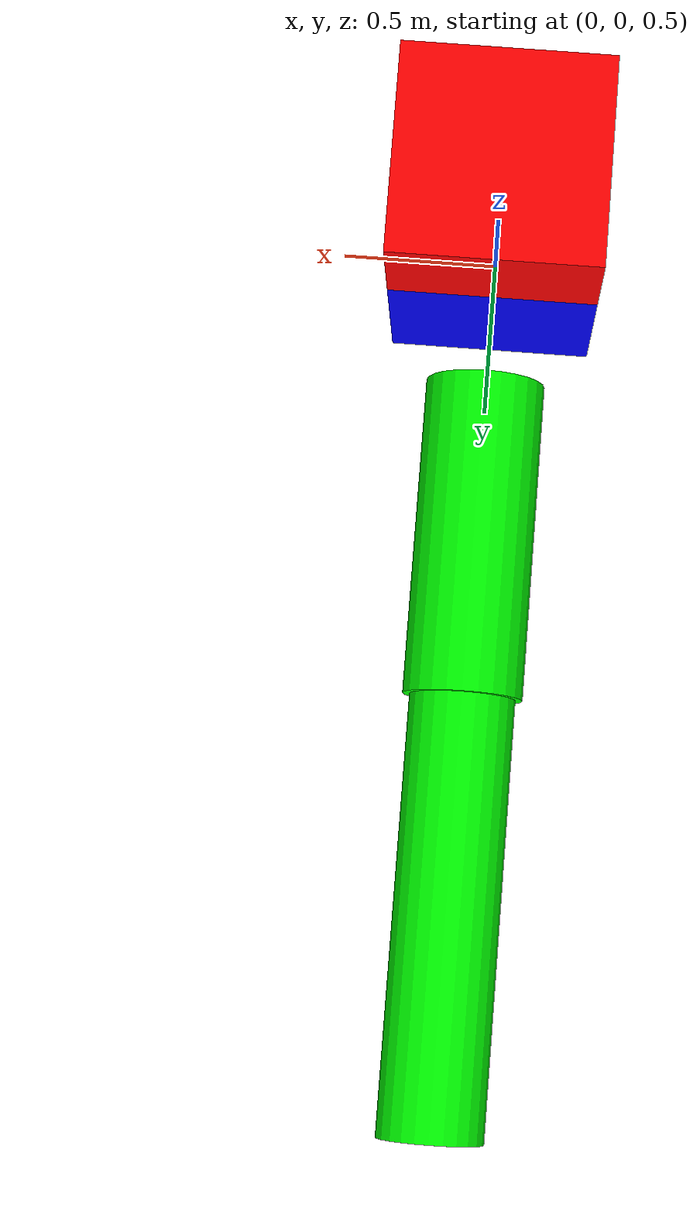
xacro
<?xml version="1.0"?>
<robot name="scara" xmlns:xacro="http://www.ros.org/wiki/xacro">

  <xacro:include filename="scara_structure.xacro"/>
  <xacro:include filename="materials.xacro"/>

  <link name="dummy"></link>

  <link name="base_link">
    <visual>
      <geometry>
        <box size="${base_link_x} ${base_link_y} ${base_link_z}"/>
      </geometry>
      <origin xyz="0.0 0.0 ${base_link_z/2}" rpy="0.0 0.0 0.0"/>
      <material name="blue"/>
    </visual>
    <collision>
      <geometry>
        <box size="${base_link_x} ${base_link_y} ${base_link_z}"/>
      </geometry>
      <origin xyz="0.0 0.0 ${base_link_z/2}" rpy="0.0 0.0 0.0"/>
    </collision>
    <xacro:box_inertia mass="${base_link_mass}" h="${base_link_z}" w="${base_link_y}" d="${base_link_x}" xyz="0.0 0.0 ${base_link_z/2}" rpy="0.0 0.0 0.0"/>
  </link>

  <joint name="dummy_joint" type="fixed">
    <parent link="dummy"/>
    <child link="base_link"/>
    <origin xyz="0.0 0.0 ${base_link_z}" rpy="0.0 0.0 0.0"/>
  </joint>

  <joint name="prismatic_joint" type="prismatic">
    <origin xyz="0.0 0.0 ${base_link_z}" rpy="0.0 0.0 0.0"/>
    <parent link="base_link"/>
    <child link="first_link"/>
    <axis xyz="0.0 0.0 1.0"/>
    <limit lower="0.0" upper="2.75" effort="10.0" velocity="2.0"/>
    <dynamics friction="0.05" damping="0.1" />
  </joint>

  <link name="first_link">
    <visual>
      <geometry>
        <box size="${first_link_x} ${first_link_y} ${first_link_z}"/>
      </geometry>
      <origin xyz="0.0 0.0 ${first_link_z/2}" rpy="0.0 0.0 0.0"/>
      <material name="red"/>
    </visual>
    <collision>
      <geometry>
        <box size="${first_link_x} ${first_link_y} ${first_link_z}"/>
      </geometry>
      <origin xyz="0.0 0.0 ${first_link_z/2}" rpy="0.0 0.0 0.0"/>
    </collision>
    <xacro:box_inertia mass="${first_link_mass}" h="${first_link_z}" w="${first_link_y}" d="${first_link_x}" xyz="0.0 0.0 ${first_link_z/2}" rpy="0.0 0.0 0.0"/>
  </link>

  <joint name="first_rev_joint" type="revolute">
    <origin xyz="0.0 ${first_link_y} ${first_link_z/2.0}" rpy="0.0 0.0 0.0"/>
    <parent link="first_link"/>
    <child link="second_link"/>
    <axis xyz="0.0 0.0 1.0"/>
    <limit lower="${-pi/2}" upper="${pi/2}" effort="10.0" velocity="2.0"/>
    <dynamics friction="0.05" damping="0.1" />
  </joint>

  <link name="second_link">
    <visual>
      <geometry>
        <cylinder radius="${second_link_r}" length="${second_link_l}"/>
      </geometry>
      <origin xyz="0.0 ${second_link_l/2} 0.0" rpy="${-pi/2} 0.0 0.0"/>
      <material name="green"/>
    </visual>
    <collision>
      <geometry>
        <cylinder radius="${second_link_r}" length="${second_link_l}"/>
      </geometry>
      <origin xyz="0.0 ${second_link_l/2} 0.0" rpy="${-pi/2} 0.0 0.0"/>
    </collision>
    <xacro:cylinder_link_inertia mass="${second_link_mass}" length="${second_link_l}" xyz="0.0 ${second_link_l/2} 0.0" rpy="${-pi/2} 0.0 0.0"/>
  </link>

  <joint name="second_rev_joint" type="revolute">
    <origin xyz="0.0 ${second_link_l} 0.0" rpy="0.0 0.0 0.0"/>
    <parent link="second_link"/>
    <child link="third_link"/>
    <axis xyz="0.0 0.0 1.0"/>
    <limit lower="${-pi/2}" upper="${pi/2}" effort="10.0" velocity="2.0"/>
    <dynamics friction="0.05" damping="0.1" />
  </joint>

  <link name="third_link">
    <visual>
      <geometry>
        <cylinder radius="${third_link_r}" length="${third_link_l}"/>
      </geometry>
      <origin xyz="0.0 ${third_link_l/2} 0.0" rpy="${-pi/2} 0.0 0.0"/>
      <material name="green"/>
    </visual>
    <collision>
      <geometry>
        <cylinder radius="${third_link_r}" length="${third_link_l}"/>
      </geometry>
      <origin xyz="0.0 ${third_link_l/2} 0.0" rpy="${-pi/2} 0.0 0.0"/>
    </collision>
    <xacro:cylinder_link_inertia mass="${third_link_mass}" length="${third_link_l}" xyz="0.0 ${third_link_l/2} 0.0" rpy="${-pi/2} 0.0 0.0"/>
  </link>

  <xacro:include filename="gazebo_specifics.xacro"/>

</robot>

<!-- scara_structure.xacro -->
<robot xmlns:xacro="http://www.ros.org/wiki/xacro">

  <xacro:property name="base_link_x" value="0.63"/>
  <xacro:property name="base_link_y" value="0.63"/>
  <xacro:property name="base_link_z" value="0.62"/>
  <xacro:property name="base_link_mass" value="30.0"/>

  <xacro:property name="first_link_x" value="0.63"/>
  <xacro:property name="first_link_y" value="0.63"/>
  <xacro:property name="first_link_z" value="0.39"/>
  <xacro:property name="first_link_mass" value="5.0"/>

  <xacro:property name="second_link_r" value="0.17"/>
  <xacro:property name="second_link_l" value="0.91"/>
  <xacro:property name="second_link_mass" value="4.0"/>

  <xacro:property name="third_link_r" value="0.15"/>
  <xacro:property name="third_link_l" value="1.23"/>
  <xacro:property name="third_link_mass" value="2.0"/>

  <xacro:macro name="cylinder_link_inertia" params="mass length xyz rpy">
    <inertial>
      <origin xyz="${xyz}" rpy="${rpy}"/>
      <mass value="${mass}"/>
      <inertia ixx="${(mass/3)*(length*length)}" ixy="0.0" ixz="0.0" iyy="0.0" iyz="0.0" izz="${(mass/3)*(length*length)}"/>
    </inertial>
  </xacro:macro>

  <xacro:macro name="box_inertia" params="mass h w d xyz rpy">
    <inertial>
      <origin xyz="${xyz}" rpy="${rpy}"/>
      <mass value="${mass}"/>
      <inertia ixx="${(mass/12)*(h*h+d*d)}" ixy="0.0" ixz="0.0" iyy="${(mass/12)*(w*w+d*d)}" iyz="0.0" izz="${(mass/12)*(w*w+h*h)}"/>
    </inertial>
  </xacro:macro>

</robot>

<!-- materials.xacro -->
<robot xmlns:xacro="http://www.ros.org/wiki/xacro">

    <material name="blue">
        <color rgba="0 0 1 1"></color>
    </material>

    <material name="red">
        <color rgba="1 0 0 1"></color>
    </material>

    <material name="green">
        <color rgba="0 1 0 1"></color>
    </material>

</robot>
